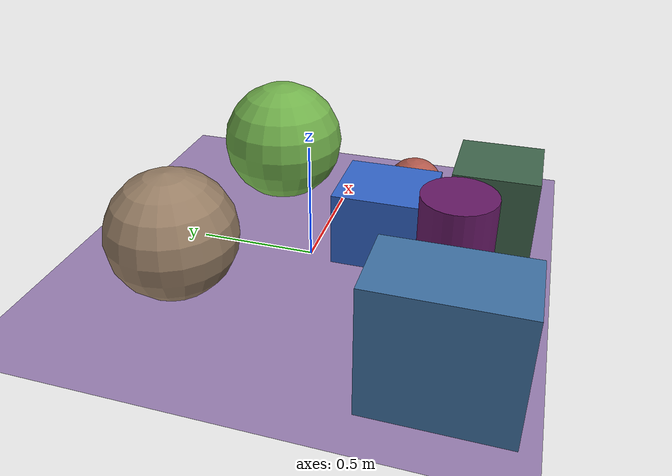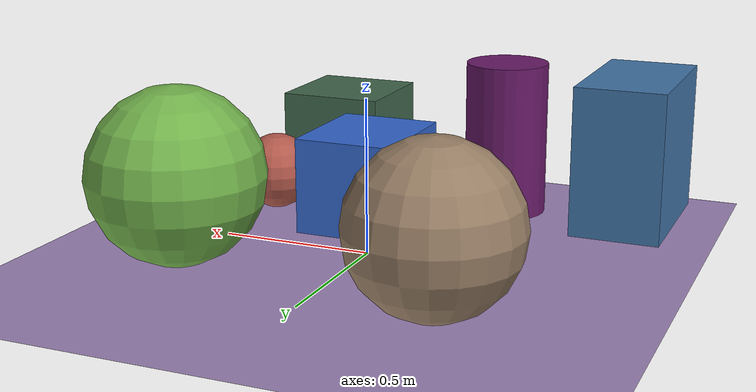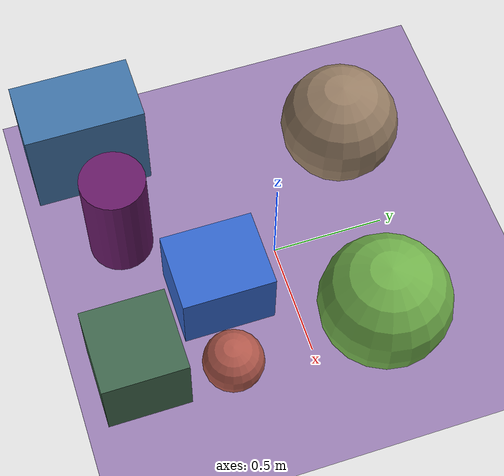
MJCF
<mujoco>
   <asset>
<texture type="skybox" builtin="gradient" rgb1="0.8 0.8 0.0" rgb2="0.5 0.0 0.3" width="256" height="256"/>
<texture name="gradient_0" builtin="gradient" rgb1="0.1 0.1 1.0" rgb2="0.3 0.7 0.6" width="200" height="200"/>
<texture name="flat_1" builtin="flat" rgb1="0.6 0.5 0.4" rgb2="0.6 0.5 0.4"  width="200" height="200"/>
<texture name="checker_2" builtin="checker" type="2d" rgb1="0.8 0.9 0.5" rgb2="0.1 0.5 0.1" width="200" height="200"/>
<texture name="gradient_3" builtin="gradient" rgb1="0.8 0.5 0.2" rgb2="0.6 0.2 0.4" width="200" height="200"/>
<texture name="gradient_4" builtin="gradient" rgb1="0.3 0.6 0.0" rgb2="0.2 0.2 0.6" width="200" height="200"/>
<texture name="checker_5" builtin="checker" type="2d" rgb1="0.2 0.7 0.7" rgb2="0.3 0.2 0.6" width="200" height="200"/>
<texture name="flat_6" builtin="flat" rgb1="0.4 0.1 0.4" rgb2="0.4 0.1 0.4"  width="200" height="200"/><material name="gradient_0_mat" reflectance="1" texture="gradient_0" texuniform="true"/>
<material name="flat_1_mat" reflectance="1" texture="flat_1" texuniform="true"/>
<material name="checker_2_mat" reflectance="0.9" texrepeat="8 8" texture="checker_2" texuniform="false" />
<material name="gradient_3_mat" reflectance="1" texture="gradient_3" texuniform="true"/>
<material name="gradient_4_mat" reflectance="1" texture="gradient_4" texuniform="true"/>
<material name="checker_5_mat" reflectance="0.9" texrepeat="2 2" texture="checker_5" texuniform="false" />
<material name="flat_6_mat" reflectance="1" texture="flat_6" texuniform="true"/>
   </asset>

   <worldbody>
      <light diffuse=".9 .9 .9" pos="0 0 3" dir="0 0 -1"/>
     <geom type="plane" size="1 1 0.1" rgba="0.6 0.5 0.7 1"/>
<geom type="box" pos="0.13 -0.3 0.16" size="0.17 0.2 0.16" material="gradient_0_mat" />
<geom type="sphere" pos="-0.39 0.43 0.26" size="0.26 0.26 0.26" material="flat_1_mat" />
<geom type="sphere" pos="0.5 0.3 0.28" size="0.28 0.28 0.28" material="checker_2_mat" />
<geom type="sphere" pos="0.5 -0.35 0.13" size="0.13 0.13 0.13" material="gradient_3_mat" />
<geom type="box" pos="0.39 -0.73 0.18" size="0.18 0.18 0.18" material="gradient_4_mat" />
<geom type="box" pos="-0.69 -0.67 0.25" size="0.15 0.26 0.25" material="checker_5_mat" />
<geom type="cylinder" pos="-0.25 -0.63 0.23" size="0.14 0.29 0.23" material="flat_6_mat" /><camera euler="60 0 180" fovy="60" name="camera_a" pos="0 -1.5 1"></camera>   </worldbody>
</mujoco>
